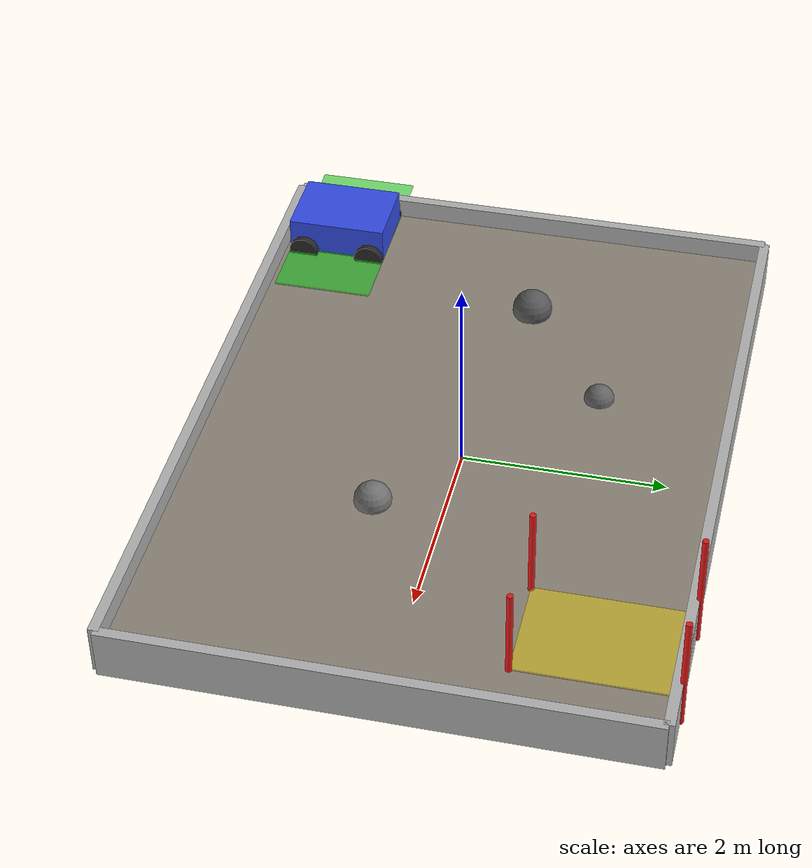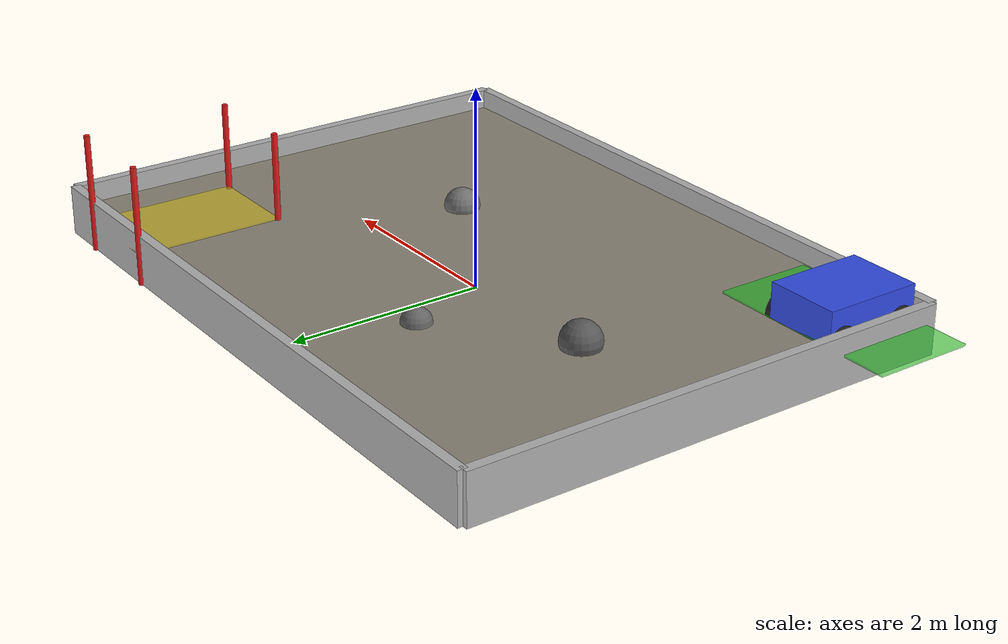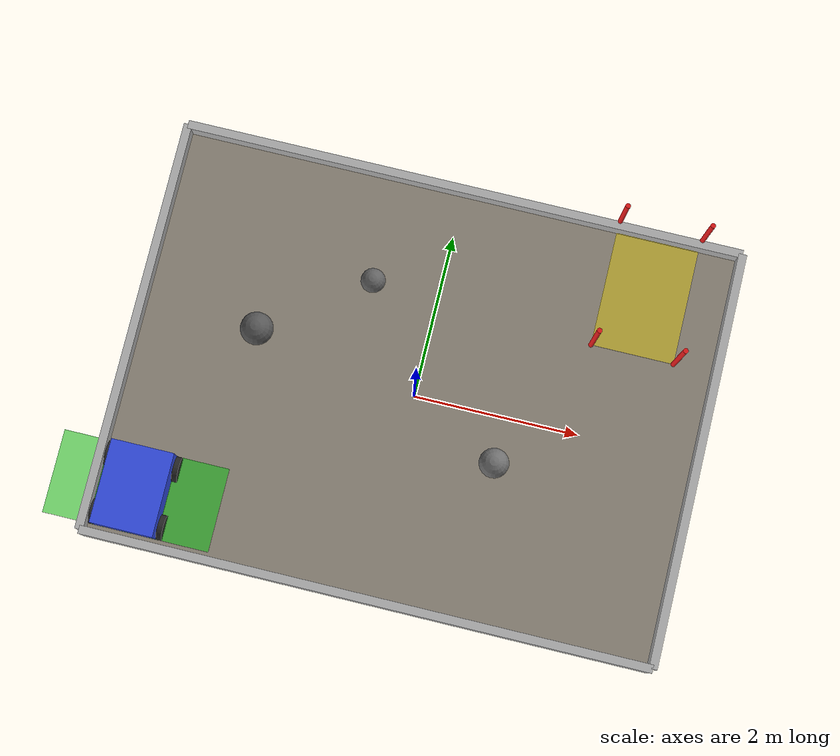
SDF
<?xml version="1.0" ?>
<sdf version="1.9">
  <world name="lunabotics_field">

    <!-- Physics settings -->
    <physics name="1ms" type="ignored">
      <max_step_size>0.001</max_step_size>
      <real_time_factor>1.0</real_time_factor>
    </physics>

    <plugin
      filename="gz-sim-physics-system"
      name="gz::sim::systems::Physics">
    </plugin>
    <plugin
      filename="gz-sim-user-commands-system"
      name="gz::sim::systems::UserCommands">
    </plugin>
    <plugin
      filename="gz-sim-scene-broadcaster-system"
      name="gz::sim::systems::SceneBroadcaster">
    </plugin>
    <plugin
      filename="gz-sim-sensors-system"
      name="gz::sim::systems::Sensors">
      <render_engine>ogre2</render_engine>
    </plugin>

    <!-- Lighting -->
    <light type="directional" name="sun">
      <cast_shadows>true</cast_shadows>
      <pose>0 0 10 0 0 0</pose>
      <diffuse>0.8 0.8 0.8 1</diffuse>
      <specular>0.2 0.2 0.2 1</specular>
      <attenuation>
        <range>1000</range>
        <constant>0.9</constant>
        <linear>0.01</linear>
        <quadratic>0.001</quadratic>
      </attenuation>
      <direction>-0.5 0.1 -0.9</direction>
    </light>

    <!-- Ground plane (Terrain) -->
    <model name="terrain">
      <static>true</static>
      <link name="terrain_link">
        <pose>0 0 0.15 0 0 0</pose>
        <collision name="terrain_collision">
          <geometry>
            <box>
              <size>6.8 5.0 0.3</size>
            </box>
          </geometry>
        </collision>
        <visual name="terrain_visual">
          <geometry>
            <box>
              <size>6.8 5.0 0.3</size>
            </box>
          </geometry>
          <material>
            <ambient>0.55 0.52 0.47 1</ambient>
            <diffuse>0.55 0.52 0.47 1</diffuse>
          </material>
        </visual>
      </link>
    </model>

    <!-- North Wall -->
    <model name="north_wall">
      <static>true</static>
      <link name="north_wall_link">
        <pose>0 2.5 0.25 0 0 0</pose>
        <collision name="north_wall_collision">
          <geometry>
            <box>
              <size>6.8 0.1 0.5</size>
            </box>
          </geometry>
        </collision>
        <visual name="north_wall_visual">
          <geometry>
            <box>
              <size>6.8 0.1 0.5</size>
            </box>
          </geometry>
          <material>
            <ambient>0.7 0.7 0.7 1</ambient>
            <diffuse>0.7 0.7 0.7 1</diffuse>
          </material>
        </visual>
      </link>
    </model>

    <!-- South Wall -->
    <model name="south_wall">
      <static>true</static>
      <link name="south_wall_link">
        <pose>0 -2.5 0.25 0 0 0</pose>
        <collision name="south_wall_collision">
          <geometry>
            <box>
              <size>6.8 0.1 0.5</size>
            </box>
          </geometry>
        </collision>
        <visual name="south_wall_visual">
          <geometry>
            <box>
              <size>6.8 0.1 0.5</size>
            </box>
          </geometry>
          <material>
            <ambient>0.7 0.7 0.7 1</ambient>
            <diffuse>0.7 0.7 0.7 1</diffuse>
          </material>
        </visual>
      </link>
    </model>

    <!-- East Wall -->
    <model name="east_wall">
      <static>true</static>
      <link name="east_wall_link">
        <pose>3.4 0 0.25 0 0 0</pose>
        <collision name="east_wall_collision">
          <geometry>
            <box>
              <size>0.1 5.0 0.5</size>
            </box>
          </geometry>
        </collision>
        <visual name="east_wall_visual">
          <geometry>
            <box>
              <size>0.1 5.0 0.5</size>
            </box>
          </geometry>
          <material>
            <ambient>0.7 0.7 0.7 1</ambient>
            <diffuse>0.7 0.7 0.7 1</diffuse>
          </material>
        </visual>
      </link>
    </model>

    <!-- West Wall -->
    <model name="west_wall">
      <static>true</static>
      <link name="west_wall_link">
        <pose>-3.4 0 0.25 0 0 0</pose>
        <collision name="west_wall_collision">
          <geometry>
            <box>
              <size>0.1 5.0 0.5</size>
            </box>
          </geometry>
        </collision>
        <visual name="west_wall_visual">
          <geometry>
            <box>
              <size>0.1 5.0 0.5</size>
            </box>
          </geometry>
          <material>
            <ambient>0.7 0.7 0.7 1</ambient>
            <diffuse>0.7 0.7 0.7 1</diffuse>
          </material>
        </visual>
      </link>
    </model>

    <!-- Start Zone (green marker) -->
    <model name="start_zone">
      <static>true</static>
      <link name="start_zone_link">
        <pose>-2.9 -1.9 0.31 0 0 0</pose>
        <visual name="start_zone_visual">
          <geometry>
            <box>
              <size>2.0 1.0 0.02</size>
            </box>
          </geometry>
          <material>
            <ambient>0.1 0.8 0.1 0.6</ambient>
            <diffuse>0.1 0.8 0.1 0.6</diffuse>
          </material>
        </visual>
      </link>
    </model>

    <!-- Brim Pad (yellow marker) -->
    <model name="brim_pad">
      <static>true</static>
      <link name="brim_pad_link">
        <pose>2.4 1.8 0.31 0 0 0</pose>
        <visual name="brim_pad_visual">
          <geometry>
            <box>
              <size>1.0 1.5 0.02</size>
            </box>
          </geometry>
          <material>
            <ambient>0.9 0.8 0.1 0.6</ambient>
            <diffuse>0.9 0.8 0.1 0.6</diffuse>
          </material>
        </visual>
      </link>
    </model>

    <!-- Brim Poles -->
    <model name="pole_ne">
      <static>true</static>
      <link name="pole_ne_link">
        <pose>2.9 2.55 0.6 0 0 0</pose>
        <collision name="pole_ne_collision">
          <geometry>
            <cylinder>
              <radius>0.03</radius>
              <length>1.2</length>
            </cylinder>
          </geometry>
        </collision>
        <visual name="pole_ne_visual">
          <geometry>
            <cylinder>
              <radius>0.03</radius>
              <length>1.2</length>
            </cylinder>
          </geometry>
          <material>
            <ambient>0.9 0.1 0.1 1</ambient>
            <diffuse>0.9 0.1 0.1 1</diffuse>
          </material>
        </visual>
      </link>
    </model>

    <model name="pole_nw">
      <static>true</static>
      <link name="pole_nw_link">
        <pose>1.9 2.55 0.6 0 0 0</pose>
        <collision name="pole_nw_collision">
          <geometry>
            <cylinder>
              <radius>0.03</radius>
              <length>1.2</length>
            </cylinder>
          </geometry>
        </collision>
        <visual name="pole_nw_visual">
          <geometry>
            <cylinder>
              <radius>0.03</radius>
              <length>1.2</length>
            </cylinder>
          </geometry>
          <material>
            <ambient>0.9 0.1 0.1 1</ambient>
            <diffuse>0.9 0.1 0.1 1</diffuse>
          </material>
        </visual>
      </link>
    </model>

    <model name="pole_se">
      <static>true</static>
      <link name="pole_se_link">
        <pose>2.9 1.05 0.6 0 0 0</pose>
        <collision name="pole_se_collision">
          <geometry>
            <cylinder>
              <radius>0.03</radius>
              <length>1.2</length>
            </cylinder>
          </geometry>
        </collision>
        <visual name="pole_se_visual">
          <geometry>
            <cylinder>
              <radius>0.03</radius>
              <length>1.2</length>
            </cylinder>
          </geometry>
          <material>
            <ambient>0.9 0.1 0.1 1</ambient>
            <diffuse>0.9 0.1 0.1 1</diffuse>
          </material>
        </visual>
      </link>
    </model>

    <model name="pole_sw">
      <static>true</static>
      <link name="pole_sw_link">
        <pose>1.9 1.05 0.6 0 0 0</pose>
        <collision name="pole_sw_collision">
          <geometry>
            <cylinder>
              <radius>0.03</radius>
              <length>1.2</length>
            </cylinder>
          </geometry>
        </collision>
        <visual name="pole_sw_visual">
          <geometry>
            <cylinder>
              <radius>0.03</radius>
              <length>1.2</length>
            </cylinder>
          </geometry>
          <material>
            <ambient>0.9 0.1 0.1 1</ambient>
            <diffuse>0.9 0.1 0.1 1</diffuse>
          </material>
        </visual>
      </link>
    </model>

    <!-- Rocks -->
    <model name="rock_1">
      <pose>-0.8 1.2 0.3 0 0 0</pose>
      <link name="rock_1_link">
        <inertial>
          <mass>10</mass>
          <inertia>
            <ixx>0.09</ixx>
            <iyy>0.09</iyy>
            <izz>0.09</izz>
          </inertia>
        </inertial>
        <collision name="rock_1_collision">
          <geometry>
            <sphere>
              <radius>0.15</radius>
            </sphere>
          </geometry>
        </collision>
        <visual name="rock_1_visual">
          <geometry>
            <sphere>
              <radius>0.15</radius>
            </sphere>
          </geometry>
          <material>
            <ambient>0.4 0.4 0.4 1</ambient>
            <diffuse>0.4 0.4 0.4 1</diffuse>
          </material>
        </visual>
      </link>
    </model>

    <model name="rock_2">
      <pose>1.1 -0.6 0.33 0 0 0</pose>
      <link name="rock_2_link">
        <inertial>
          <mass>15</mass>
          <inertia>
            <ixx>0.15</ixx>
            <iyy>0.15</iyy>
            <izz>0.15</izz>
          </inertia>
        </inertial>
        <collision name="rock_2_collision">
          <geometry>
            <sphere>
              <radius>0.18</radius>
            </sphere>
          </geometry>
        </collision>
        <visual name="rock_2_visual">
          <geometry>
            <sphere>
              <radius>0.18</radius>
            </sphere>
          </geometry>
          <material>
            <ambient>0.45 0.45 0.45 1</ambient>
            <diffuse>0.45 0.45 0.45 1</diffuse>
          </material>
        </visual>
      </link>
    </model>

    <model name="rock_3">
      <pose>-2.0 0.3 0.35 0 0 0</pose>
      <link name="rock_3_link">
        <inertial>
          <mass>20</mass>
          <inertia>
            <ixx>0.2</ixx>
            <iyy>0.2</iyy>
            <izz>0.2</izz>
          </inertia>
        </inertial>
        <collision name="rock_3_collision">
          <geometry>
            <sphere>
              <radius>0.20</radius>
            </sphere>
          </geometry>
        </collision>
        <visual name="rock_3_visual">
          <geometry>
            <sphere>
              <radius>0.20</radius>
            </sphere>
          </geometry>
          <material>
            <ambient>0.35 0.35 0.35 1</ambient>
            <diffuse>0.35 0.35 0.35 1</diffuse>
          </material>
        </visual>
      </link>
    </model>

    <!-- DUMMY ROVER (1m x 0.75m x 0.35m) -->
    <model name="lunabotics_rover">
      <pose>-2.9 -1.9 0.48 0 0 1.5708</pose>

      <link name="chassis">
        <inertial>
          <mass>50</mass>
          <inertia>
            <ixx>3.646</ixx>
            <iyy>5.208</iyy>
            <izz>8.333</izz>
          </inertia>
        </inertial>

        <!-- Chassis collision and visual -->
        <collision name="chassis_collision">
          <geometry>
            <box>
              <size>1.0 0.75 0.35</size>
            </box>
          </geometry>
        </collision>
        <visual name="chassis_visual">
          <geometry>
            <box>
              <size>1.0 0.75 0.35</size>
            </box>
          </geometry>
          <material>
            <ambient>0.2 0.3 0.9 1</ambient>
            <diffuse>0.2 0.3 0.9 1</diffuse>
          </material>
        </visual>

        <!-- RGB Camera (left side) -->
        <sensor name="rgb_camera" type="camera">
          <pose>0 0.4 0.2 0 0 1.5708</pose>
          <camera>
            <horizontal_fov>1.2</horizontal_fov>
            <image>
              <width>1920</width>
              <height>1080</height>
            </image>
            <clip>
              <near>0.1</near>
              <far>100</far>
            </clip>
          </camera>
          <always_on>1</always_on>
          <update_rate>30</update_rate>
          <visualize>true</visualize>
        </sensor>

        <!-- LiDAR (top center) -->
        <sensor name="lidar" type="gpu_lidar">
          <pose>0 0 0.25 0 0 0</pose>
          <topic>lidar</topic>
          <gz_frame_id>lidar_frame</gz_frame_id>
          <update_rate>10</update_rate>
          <lidar>
            <scan>
              <horizontal>
                <samples>512</samples>
                <resolution>1</resolution>
                <min_angle>-3.14159</min_angle>
                <max_angle>3.14159</max_angle>
              </horizontal>
              <vertical>
                <samples>16</samples>
                <resolution>1</resolution>
                <min_angle>-0.2</min_angle>
                <max_angle>0.2</max_angle>
              </vertical>
            </scan>
            <range>
              <min>0.15</min>
              <max>30</max>
              <resolution>0.01</resolution>
            </range>
            <noise>
              <type>gaussian</type>
              <mean>0.0</mean>
              <stddev>0.01</stddev>
            </noise>
          </lidar>
          <always_on>1</always_on>
          <visualize>true</visualize>
        </sensor>

        <!-- IR Sensor - Front -->
        <sensor name="ir_front" type="ray">
          <pose>0.52 0 0.1 0 0 0</pose>
          <ray>
            <scan>
              <horizontal>
                <samples>3</samples>
                <resolution>1</resolution>
                <min_angle>-0.1</min_angle>
                <max_angle>0.1</max_angle>
              </horizontal>
            </scan>
            <range>
              <min>0.05</min>
              <max>0.8</max>
              <resolution>0.01</resolution>
            </range>
          </ray>
          <always_on>1</always_on>
          <update_rate>20</update_rate>
          <visualize>true</visualize>
        </sensor>

        <!-- IR Sensor - Front Left Corner -->
        <sensor name="ir_front_left" type="ray">
          <pose>0.48 0.36 0.1 0 0 0.785</pose>
          <ray>
            <scan>
              <horizontal>
                <samples>3</samples>
                <resolution>1</resolution>
                <min_angle>-0.1</min_angle>
                <max_angle>0.1</max_angle>
              </horizontal>
            </scan>
            <range>
              <min>0.05</min>
              <max>0.8</max>
              <resolution>0.01</resolution>
            </range>
          </ray>
          <always_on>1</always_on>
          <update_rate>20</update_rate>
          <visualize>true</visualize>
        </sensor>

        <!-- IR Sensor - Front Right Corner -->
        <sensor name="ir_front_right" type="ray">
          <pose>0.48 -0.36 0.1 0 0 -0.785</pose>
          <ray>
            <scan>
              <horizontal>
                <samples>3</samples>
                <resolution>1</resolution>
                <min_angle>-0.1</min_angle>
                <max_angle>0.1</max_angle>
              </horizontal>
            </scan>
            <range>
              <min>0.05</min>
              <max>0.8</max>
              <resolution>0.01</resolution>
            </range>
          </ray>
          <always_on>1</always_on>
          <update_rate>20</update_rate>
          <visualize>true</visualize>
        </sensor>

        <!-- IR Sensor - Rear -->
        <sensor name="ir_rear" type="ray">
          <pose>-0.52 0 0.1 0 0 3.14159</pose>
          <ray>
            <scan>
              <horizontal>
                <samples>3</samples>
                <resolution>1</resolution>
                <min_angle>-0.1</min_angle>
                <max_angle>0.1</max_angle>
              </horizontal>
            </scan>
            <range>
              <min>0.05</min>
              <max>0.8</max>
              <resolution>0.01</resolution>
            </range>
          </ray>
          <always_on>1</always_on>
          <update_rate>20</update_rate>
          <visualize>true</visualize>
        </sensor>

        <!-- IR Sensor - Rear Left Corner -->
        <sensor name="ir_rear_left" type="ray">
          <pose>-0.48 0.36 0.1 0 0 2.356</pose>
          <ray>
            <scan>
              <horizontal>
                <samples>3</samples>
                <resolution>1</resolution>
                <min_angle>-0.1</min_angle>
                <max_angle>0.1</max_angle>
              </horizontal>
            </scan>
            <range>
              <min>0.05</min>
              <max>0.8</max>
              <resolution>0.01</resolution>
            </range>
          </ray>
          <always_on>1</always_on>
          <update_rate>20</update_rate>
          <visualize>true</visualize>
        </sensor>

        <!-- IR Sensor - Rear Right Corner -->
        <sensor name="ir_rear_right" type="ray">
          <pose>-0.48 -0.36 0.1 0 0 -2.356</pose>
          <ray>
            <scan>
              <horizontal>
                <samples>3</samples>
                <resolution>1</resolution>
                <min_angle>-0.1</min_angle>
                <max_angle>0.1</max_angle>
              </horizontal>
            </scan>
            <range>
              <min>0.05</min>
              <max>0.8</max>
              <resolution>0.01</resolution>
            </range>
          </ray>
          <always_on>1</always_on>
          <update_rate>20</update_rate>
          <visualize>true</visualize>
        </sensor>

        <!-- GPS/IMU plugin -->
        <sensor name="imu_sensor" type="imu">
          <always_on>1</always_on>
          <update_rate>100</update_rate>
        </sensor>

      </link>

      <!-- Front Left Wheel -->
      <link name="front_left_wheel">
        <pose>0.35 0.4 -0.15 -1.5708 0 0</pose>
        <inertial>
          <mass>2</mass>
          <inertia>
            <ixx>0.0225</ixx>
            <iyy>0.0225</iyy>
            <izz>0.045</izz>
          </inertia>
        </inertial>
        <collision name="front_left_wheel_collision">
          <geometry>
            <cylinder>
              <radius>0.15</radius>
              <length>0.08</length>
            </cylinder>
          </geometry>
          <surface>
            <friction>
              <ode>
                <mu>1.0</mu>
                <mu2>1.0</mu2>
              </ode>
            </friction>
          </surface>
        </collision>
        <visual name="front_left_wheel_visual">
          <geometry>
            <cylinder>
              <radius>0.15</radius>
              <length>0.08</length>
            </cylinder>
          </geometry>
          <material>
            <ambient>0.15 0.15 0.15 1</ambient>
            <diffuse>0.15 0.15 0.15 1</diffuse>
          </material>
        </visual>
      </link>

      <joint name="front_left_wheel_joint" type="revolute">
        <parent>chassis</parent>
        <child>front_left_wheel</child>
        <axis>
          <xyz>0 0 1</xyz>
          <limit>
            <lower>-1e9</lower>
            <upper>1e9</upper>
          </limit>
        </axis>
      </joint>

      <!-- Front Right Wheel -->
      <link name="front_right_wheel">
        <pose>0.35 -0.4 -0.15 -1.5708 0 0</pose>
        <inertial>
          <mass>2</mass>
          <inertia>
            <ixx>0.0225</ixx>
            <iyy>0.0225</iyy>
            <izz>0.045</izz>
          </inertia>
        </inertial>
        <collision name="front_right_wheel_collision">
          <geometry>
            <cylinder>
              <radius>0.15</radius>
              <length>0.08</length>
            </cylinder>
          </geometry>
          <surface>
            <friction>
              <ode>
                <mu>1.0</mu>
                <mu2>1.0</mu2>
              </ode>
            </friction>
          </surface>
        </collision>
        <visual name="front_right_wheel_visual">
          <geometry>
            <cylinder>
              <radius>0.15</radius>
              <length>0.08</length>
            </cylinder>
          </geometry>
          <material>
            <ambient>0.15 0.15 0.15 1</ambient>
            <diffuse>0.15 0.15 0.15 1</diffuse>
          </material>
        </visual>
      </link>

      <joint name="front_right_wheel_joint" type="revolute">
        <parent>chassis</parent>
        <child>front_right_wheel</child>
        <axis>
          <xyz>0 0 1</xyz>
          <limit>
            <lower>-1e9</lower>
            <upper>1e9</upper>
          </limit>
        </axis>
      </joint>

      <!-- Rear Left Wheel -->
      <link name="rear_left_wheel">
        <pose>-0.35 0.4 -0.15 -1.5708 0 0</pose>
        <inertial>
          <mass>2</mass>
          <inertia>
            <ixx>0.0225</ixx>
            <iyy>0.0225</iyy>
            <izz>0.045</izz>
          </inertia>
        </inertial>
        <collision name="rear_left_wheel_collision">
          <geometry>
            <cylinder>
              <radius>0.15</radius>
              <length>0.08</length>
            </cylinder>
          </geometry>
          <surface>
            <friction>
              <ode>
                <mu>1.0</mu>
                <mu2>1.0</mu2>
              </ode>
            </friction>
          </surface>
        </collision>
        <visual name="rear_left_wheel_visual">
          <geometry>
            <cylinder>
              <radius>0.15</radius>
              <length>0.08</length>
            </cylinder>
          </geometry>
          <material>
            <ambient>0.15 0.15 0.15 1</ambient>
            <diffuse>0.15 0.15 0.15 1</diffuse>
          </material>
        </visual>
      </link>

      <joint name="rear_left_wheel_joint" type="revolute">
        <parent>chassis</parent>
        <child>rear_left_wheel</child>
        <axis>
          <xyz>0 0 1</xyz>
          <limit>
            <lower>-1e9</lower>
            <upper>1e9</upper>
          </limit>
        </axis>
      </joint>

      <!-- Rear Right Wheel -->
      <link name="rear_right_wheel">
        <pose>-0.35 -0.4 -0.15 -1.5708 0 0</pose>
        <inertial>
          <mass>2</mass>
          <inertia>
            <ixx>0.0225</ixx>
            <iyy>0.0225</iyy>
            <izz>0.045</izz>
          </inertia>
        </inertial>
        <collision name="rear_right_wheel_collision">
          <geometry>
            <cylinder>
              <radius>0.15</radius>
              <length>0.08</length>
            </cylinder>
          </geometry>
          <surface>
            <friction>
              <ode>
                <mu>1.0</mu>
                <mu2>1.0</mu2>
              </ode>
            </friction>
          </surface>
        </collision>
        <visual name="rear_right_wheel_visual">
          <geometry>
            <cylinder>
              <radius>0.15</radius>
              <length>0.08</length>
            </cylinder>
          </geometry>
          <material>
            <ambient>0.15 0.15 0.15 1</ambient>
            <diffuse>0.15 0.15 0.15 1</diffuse>
          </material>
        </visual>
      </link>

      <joint name="rear_right_wheel_joint" type="revolute">
        <parent>chassis</parent>
        <child>rear_right_wheel</child>
        <axis>
          <xyz>0 0 1</xyz>
          <limit>
            <lower>-1e9</lower>
            <upper>1e9</upper>
          </limit>
        </axis>
      </joint>

      <!-- Differential Drive Plugin for Gazebo Harmonic -->
      <plugin
        filename="gz-sim-diff-drive-system"
        name="gz::sim::systems::DiffDrive">
        <left_joint>front_left_wheel_joint</left_joint>
        <left_joint>rear_left_wheel_joint</left_joint>
        <right_joint>front_right_wheel_joint</right_joint>
        <right_joint>rear_right_wheel_joint</right_joint>
        <wheel_separation>0.8</wheel_separation>
        <wheel_radius>0.15</wheel_radius>
        <odom_publish_frequency>50</odom_publish_frequency>
        <topic>cmd_vel</topic>
        <odom_topic>odom</odom_topic>
        <tf_topic>/tf</tf_topic>
        <frame_id>odom</frame_id>
        <child_frame_id>chassis</child_frame_id>
      </plugin>

      <!-- Joint State Publisher -->
      <plugin
        filename="gz-sim-joint-state-publisher-system"
        name="gz::sim::systems::JointStatePublisher">
      </plugin>

      <!-- Pose Publisher -->
      <plugin
        filename="gz-sim-pose-publisher-system"
        name="gz::sim::systems::PosePublisher">
        <publish_link_pose>true</publish_link_pose>
        <publish_collision_pose>false</publish_collision_pose>
        <publish_visual_pose>false</publish_visual_pose>
        <publish_nested_model_pose>true</publish_nested_model_pose>
      </plugin>

    </model>

  </world>
</sdf>
